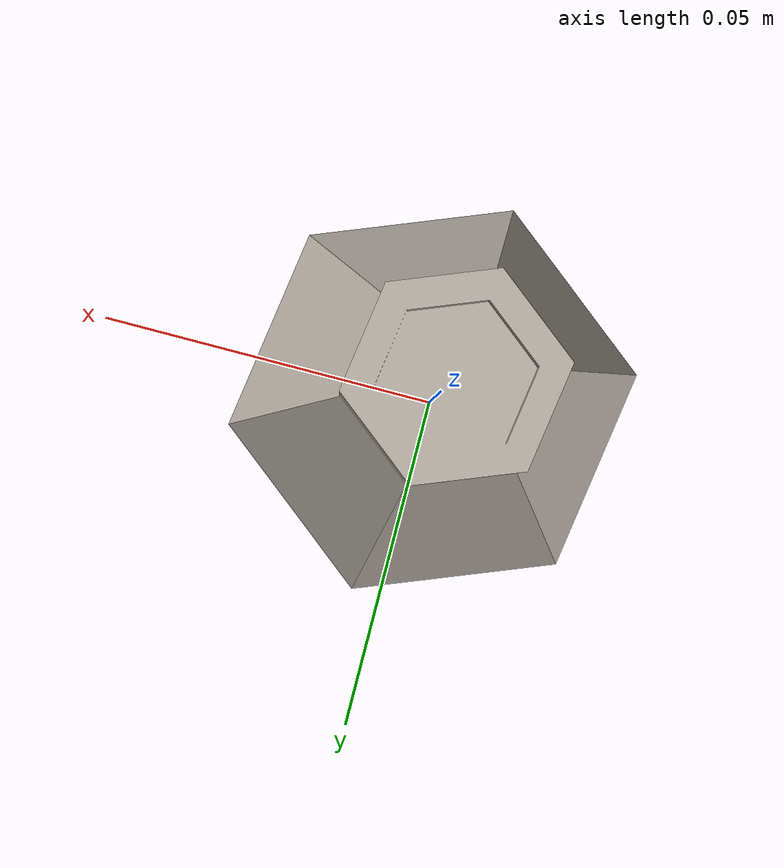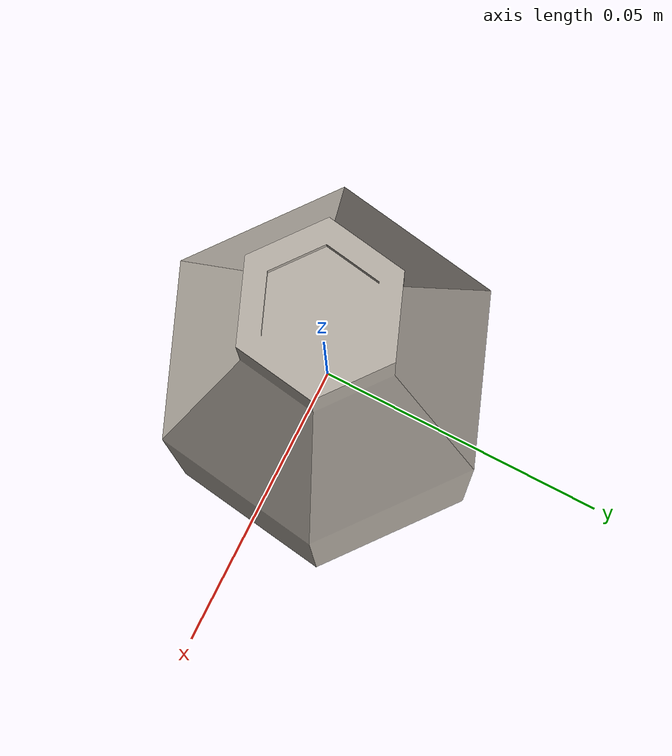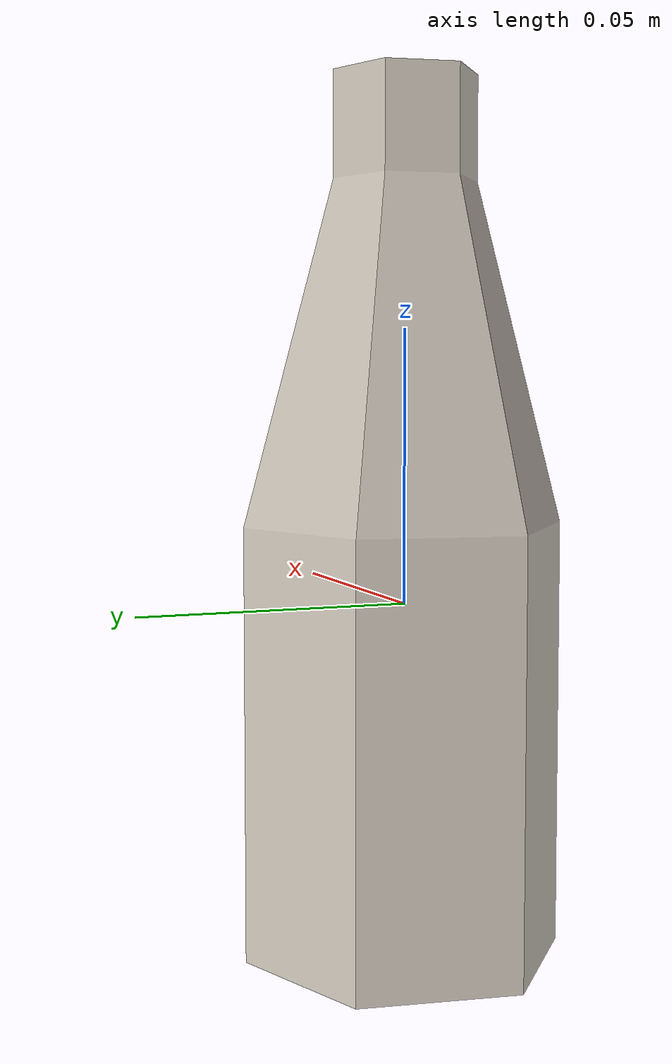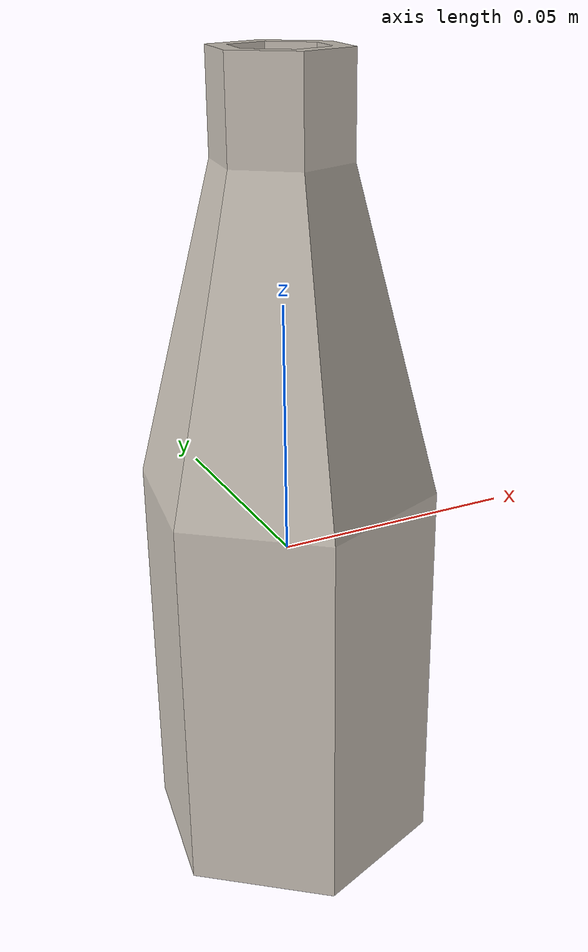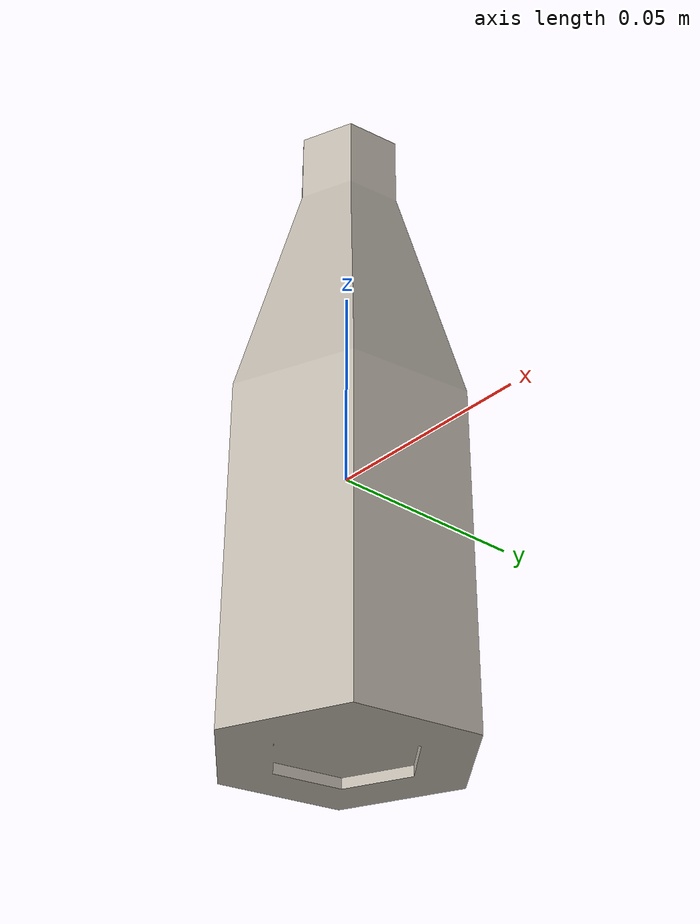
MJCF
<mujoco model="bottle">
  <asset>
    <mesh file="meshes/bottle.stl" name="bottle_mesh"/>
    <texture type="skybox" file="../textures/glass.png" name="tex-glass"/>
    <material name="glass" reflectance="0.5" texrepeat="5 5" texture="tex-glass" texuniform="true"/>
  </asset>
  <worldbody>
    <body>
      <body name="object">
        <geom pos="0 0 0" mesh="bottle_mesh" type="mesh" solimp="0.998 0.998 0.001" solref="0.001 1" density="50" friction="0.95 0.3 0.1" material="glass" contype="0" conaffinity="0" group="1"/>
        <geom pos="0 0 0" mesh="bottle_mesh" type="mesh" solimp="0.998 0.998 0.001" solref="0.001 1" density="50" friction="0.95 0.3 0.1" material="glass" group="0"/>
      </body>
      <site rgba="0 0 0 0" size="0.005" pos="0 0 -0.082" name="bottom_site"/>
      <site rgba="0 0 0 0" size="0.005" pos="0 0 0.075" name="top_site"/>
      <site rgba="0 0 0 0" size="0.005" pos="0.0254 0.0254 0" name="horizontal_radius_site"/>
    </body>
  </worldbody>
</mujoco>
